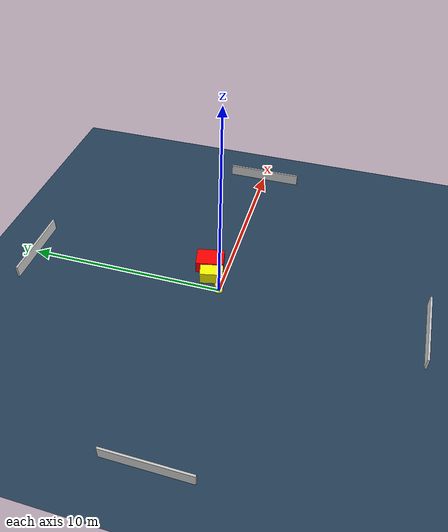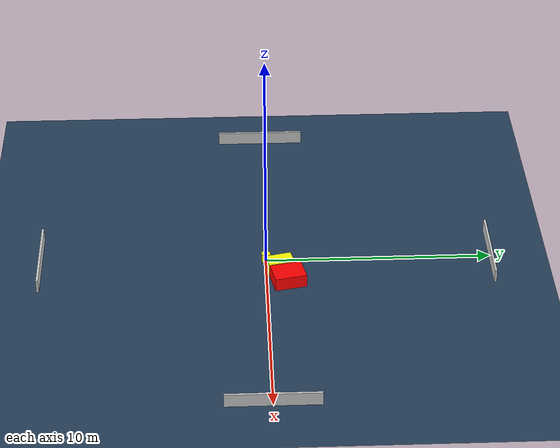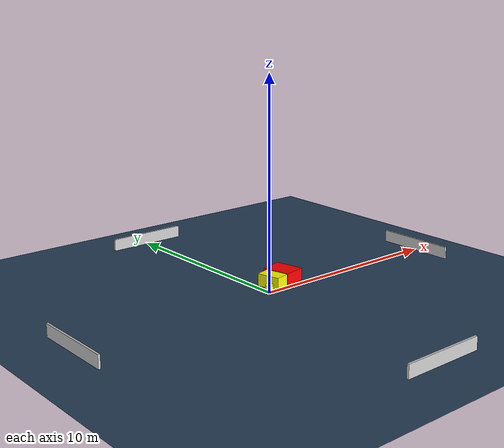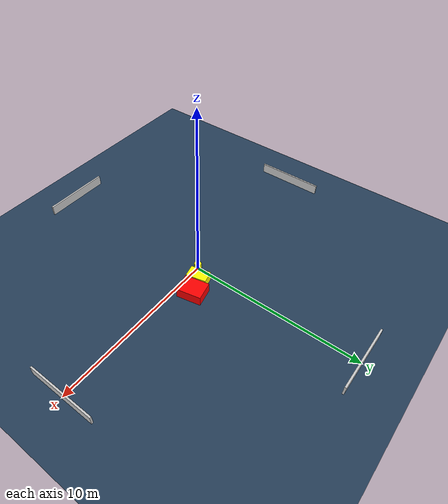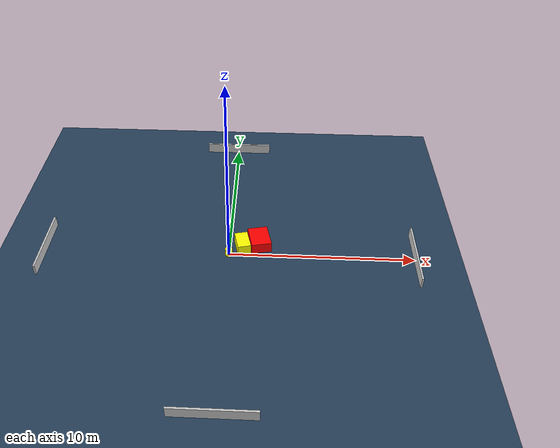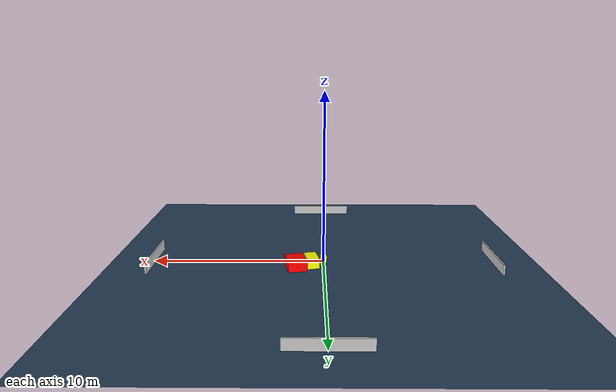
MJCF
<?xml version="1.0" ?>
<mujoco model="generated_environment">
  <option timestep="0.01" integrator="RK4" cone="elliptic"/>
  <default>
    <geom density="1"/>
  </default>
  <asset>
    <texture builtin="gradient" height="3072" name="skybox" rgb1="0.3 0.5 0.7" rgb2="0 0 0" type="skybox" width="512"/>
    <texture builtin="checker" height="300" name="groundplane" rgb1="0.2 0.3 0.4" rgb2="0.1 0.2 0.3" type="2d" width="300"/>
    <material name="groundplane" reflectance="0.2" texrepeat="5 5" texture="groundplane"/>
  </asset>
  <worldbody>
    <light dir="0 0 -1" directional="true" pos="0 0 1.5"/>
    <geom condim="3" friction="0.5 0.005 0.001" material="groundplane" name="floor" pos="0 0 0" size="0 0 0.05" type="plane"/>
    <body name="walls">
      <geom name="wall_1" condim="4" pos="-10.0 0.0 0.3" rgba="0.800000011920929 0.800000011920929 0.800000011920929 1.0" size="0.05 2.0 0.3" type="box"/>
      <geom name="wall_2" condim="4" pos="10.0 0.0 0.3" rgba="0.800000011920929 0.800000011920929 0.800000011920929 1.0" size="0.05 2.0 0.3" type="box"/>
      <geom name="wall_3" condim="4" pos="0.0 -10.0 0.3" rgba="0.800000011920929 0.800000011920929 0.800000011920929 1.0" size="2.0 0.05 0.3" type="box"/>
      <geom name="wall_4" condim="4" pos="0.0 10.0 0.3" rgba="0.800000011920929 0.800000011920929 0.800000011920929 1.0" size="2.0 0.05 0.3" type="box"/>
    </body>
    <body name="robot">
      <joint name="joint_x" type="slide" pos="0 0 0" axis="1 0 0"/>
      <joint name="joint_y" type="slide" pos="0 0 0" axis="0 1 0"/>
      <geom name="robot" type="cylinder" pos="0.0 0.0 0.2" size="0.2 0.2 0.0" mass="5.0" friction="1.0 0.005 0.0001" condim="4" rgba="1.0 1.0 0.0 1.0"/>
    </body>
    <body name="obstacle_1_movable">
      <geom name="obstacle_1_movable" condim="4" pos="0.7159534686556271 0.5983040009592562 0.3" euler="0 0 102.93299090054077" friction="0.0 0.005 0.001" rgba="1.0 1.0 0.0 1.0" size="0.5760253655658167 0.3577069253200934 0.3" type="box" mass="0.1"/>
      <joint type="free"/>
    </body>
    <body name="obstacle_2_static">
      <geom name="obstacle_2_static" condim="4" pos="1.6222536731959003 0.9292168668815631 0.3" euler="0 0 101.78812351302362" friction="0.0 0.005 0.001" rgba="1.0 0.0 0.0 1.0" size="0.7032944280626054 0.5440038313148804 0.3" type="box"/>
    </body>
  </worldbody>
  <actuator>
    <motor name="actuator_x" joint="joint_x" gear="1" ctrlrange="-1 1"/>
    <motor name="actuator_y" joint="joint_y" gear="1" ctrlrange="-1 1"/>
  </actuator>
</mujoco>
